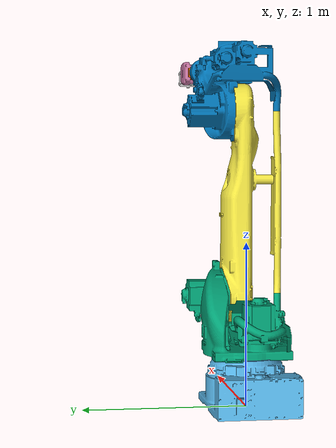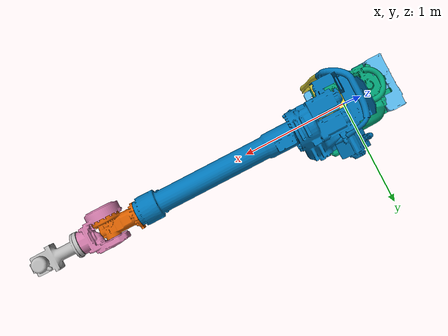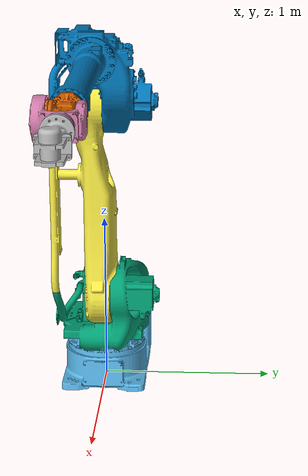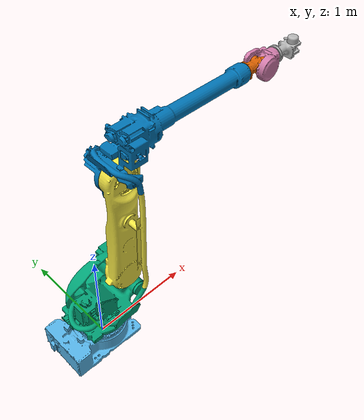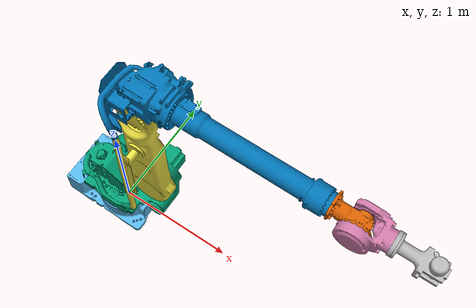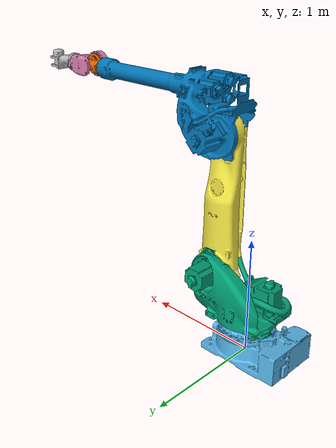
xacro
<?xml version="1.0" ?>
<robot name="workcell" xmlns:xacro="http://ros.org/wiki/xacro" xmlns:tesseract="http://ros.org/wiki/tesseract" tesseract:make_convex="true">

    <!-- Setup -->
    <material name="pumpkin_grey">
      <color rgba="0.7 0.7 0.7 1"/>
    </material>

    <!-- Global Origin -->
    <link name="world"/>

    <!-- Robot - Yaskawa Motoman GP180-120 -->
    <xacro:include filename="$(find motoman_resources)/urdf/common_materials.xacro"/>
    <xacro:include filename="$(find motoman_gp180_support)/urdf/gp180_120_macro.xacro"/>
    <xacro:motoman_gp180_120 prefix=""/>
    <joint name="fix_origin_gp180_120" type="fixed">
      <origin xyz="0 0 0" rpy="0 0 0"/>
      <parent link="world"/>
      <child link="base_link"/>
    </joint>

    <!-- EOAT PushCorp & Zivid Camera -->
    <link name="dewalt_router">
      <visual>
        <geometry>
          <mesh filename="package://pumpkin_support/meshes/dewalt_router_visual.stl"/>
        </geometry>
        <material name="pumpkin_grey"/>
      </visual>
      <collision>
        <geometry>
          <mesh filename="package://pumpkin_support/meshes/dewalt_router_collision.stl"/>
        </geometry>
      </collision>
    </link>
    <joint name="fixed_flange-dewalt_router" type="fixed">
      <parent link="flange"/>
      <child link="dewalt_router"/>
    </joint>

    <!-- TCP -->
    <link name="router_tcp"/>
    <joint name="fixed_tcp" type="fixed">
      <origin xyz="0.246312 0 -0.150387" rpy="${radians(180)} 0 ${radians(180)}"/>
      <parent link="flange"/>
      <child link="router_tcp"/>
    </joint>

</robot>

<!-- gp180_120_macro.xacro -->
<robot xmlns:xacro="http://ros.org/wiki/xacro">
<xacro:macro name="motoman_gp180_120" params="prefix">
    <xacro:include filename="$(find motoman_resources)/urdf/common_materials.xacro"/>

    <!-- link list -->
    <link name="${prefix}base_link">
        <visual>
            <geometry>
                <mesh filename="package://motoman_gp180_support/meshes/gp180_120/visual/base_link.stl"/>
            </geometry>
            <xacro:material_yaskawa_blue/>
        </visual>
        <collision>
            <geometry>
                <mesh filename="package://motoman_gp180_support/meshes/gp180_120/collision/base_link.stl"/>
            </geometry>
        </collision>
    </link>
    <link name="${prefix}link_1_s">
        <visual>
            <geometry>
                <mesh filename="package://motoman_gp180_support/meshes/gp180_120/visual/link_1_s.stl"/>
            </geometry>
            <xacro:material_yaskawa_blue/>
        </visual>
        <collision>
            <geometry>
                <mesh filename="package://motoman_gp180_support/meshes/gp180_120/collision/link_1_s.stl"/>
            </geometry>
        </collision>
    </link>
    <link name="${prefix}link_2_l">
        <visual>
            <geometry>
                <mesh filename="package://motoman_gp180_support/meshes/gp180_120/visual/link_2_l.stl"/>
            </geometry>
            <xacro:material_yaskawa_blue/>
        </visual>
        <collision>
            <geometry>
                <mesh filename="package://motoman_gp180_support/meshes/gp180_120/collision/link_2_l.stl"/>
            </geometry>
        </collision>
    </link>
    <link name="${prefix}link_3_u">
        <visual>
            <geometry>
                <mesh filename="package://motoman_gp180_support/meshes/gp180_120/visual/link_3_u.stl"/>
            </geometry>
            <xacro:material_yaskawa_blue/>
        </visual>
        <collision>
            <geometry>
                <mesh filename="package://motoman_gp180_support/meshes/gp180_120/collision/link_3_u.stl"/>
            </geometry>
        </collision>
    </link>
    <link name="${prefix}link_4_r">
        <visual>
            <geometry>
                <mesh filename="package://motoman_gp180_support/meshes/gp180_120/visual/link_4_r.stl"/>
            </geometry>
            <xacro:material_yaskawa_blue/>
        </visual>
        <collision>
            <geometry>
                <mesh filename="package://motoman_gp180_support/meshes/gp180_120/collision/link_4_r.stl"/>
            </geometry>
        </collision>
    </link>
    <link name="${prefix}link_5_b">
        <visual>
            <geometry>
                <mesh filename="package://motoman_gp180_support/meshes/gp180_120/visual/link_5_b.stl"/>
            </geometry>
            <xacro:material_yaskawa_blue/>
        </visual>
        <collision>
            <geometry>
                <mesh filename="package://motoman_gp180_support/meshes/gp180_120/collision/link_5_b.stl"/>
            </geometry>
        </collision>
    </link>
    <link name="${prefix}link_6_t">
        <visual>
            <geometry>
                <mesh filename="package://motoman_gp180_support/meshes/gp180_120/visual/link_6_t.stl"/>
            </geometry>
            <xacro:material_yaskawa_blue/>
        </visual>
        <collision>
            <geometry>
                <mesh filename="package://motoman_gp180_support/meshes/gp180_120/collision/link_6_t.stl"/>
            </geometry>
        </collision>
    </link>
    <link name="${prefix}tool0"/>
    <!-- end of link list -->

    <!-- joint list -->
    <joint name="${prefix}joint_1_s" type="revolute">
        <parent link="${prefix}base_link"/>
        <child link="${prefix}link_1_s"/>
        <origin xyz="0 0 0.650" rpy="0 0 0" />
        <axis xyz="0 0 1" />
        <limit lower="${radians(-180)}" upper="${radians(180)}" effort="9414.38" velocity="${radians(125)}"/>
    </joint>
    <joint name="${prefix}joint_2_l" type="revolute">
        <parent link="${prefix}link_1_s"/>
        <child link="${prefix}link_2_l"/>
        <origin xyz="0.325 0 0" rpy="0 0 0" />
        <axis xyz="0 1 0" />
        <limit lower="${radians(-60)}" upper="${radians(76)}" effort="11645.4" velocity="${radians(115)}"/>
    </joint>
    <joint name="${prefix}joint_3_u" type="revolute">
        <parent link="${prefix}link_2_l"/>
        <child link="${prefix}link_3_u"/>
        <origin xyz="0 0 1.150" rpy="0 0 0" />
        <axis xyz="0 -1 0" />
        <limit lower="${radians(-86)}" upper="${radians(90)}" effort="7060.79" velocity="${radians(125)}"/>
    </joint>
    <joint name="${prefix}joint_4_r" type="revolute">
        <parent link="${prefix}link_3_u"/>
        <child link="${prefix}link_4_r"/>
        <origin xyz="0 0 0.300" rpy="0 0 0" />
        <axis xyz="-1 0 0" />
        <limit lower="${radians(-360)}" upper="${radians(360)}" effort="1392.54" velocity="${radians(182)}"/>
    </joint>
    <joint name="${prefix}joint_5_b" type="revolute">
        <parent link="${prefix}link_4_r"/>
        <child link="${prefix}link_5_b"/>
        <origin xyz="1.590 0 0" rpy="0 0 0" />
        <axis xyz="0 -1 0" />
        <limit lower="${radians(-130)}" upper="${radians(130)}" effort="1863.26" velocity="${radians(175)}"/>
    </joint>
    <joint name="${prefix}joint_6_t" type="revolute">
        <parent link="${prefix}link_5_b"/>
        <child link="${prefix}link_6_t"/>
        <origin xyz="0.225 0 0" rpy="0 0 0" />
        <axis xyz="-1 0 0" />
        <limit lower="${radians(-360)}" upper="${radians(360)}" effort="926.73" velocity="${radians(265)}"/>
    </joint>
    <joint name="${prefix}joint_6_t-tool0" type="fixed">
        <origin xyz="0 0 0" rpy="${radians(180)} ${radians(-90)} 0"/>
        <parent link="${prefix}link_6_t"/>
        <child link="${prefix}tool0"/>
    </joint>
    <!-- end of joint list -->

    <!-- ROS base_link to Robot Manufacturer World Coordinates transform -->
    <link name="${prefix}base" />
    <joint name="${prefix}base_link-base" type="fixed">
        <origin xyz="0 0 0.650" rpy="0 0 0"/>
        <parent link="${prefix}base_link"/>
        <child link="${prefix}base"/>
    </joint>

  <!-- ROS-Industrial 'flange' frame.. attachment point for EEF models -->
  <link name="${prefix}flange" />
  <joint name="${prefix}joint_6_t-flange" type="fixed">
    <parent link="${prefix}link_6_t" />
    <child link="${prefix}flange" />
    <origin xyz="0 0 0" rpy="0 0 0" />
  </joint>

</xacro:macro>
</robot>
